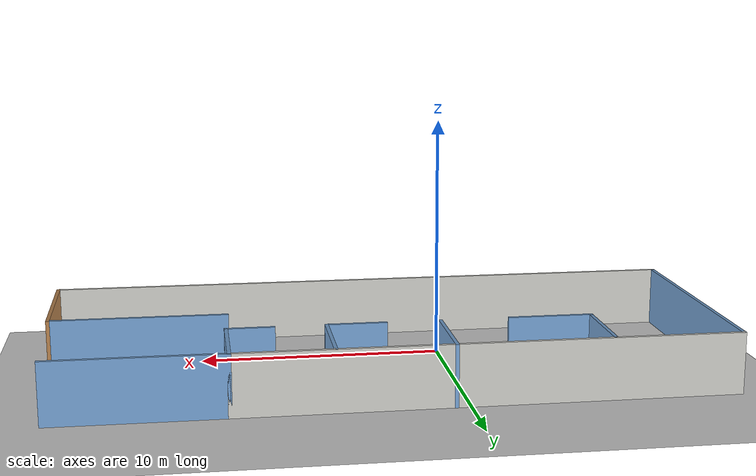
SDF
<sdf version="1.6">
 <world name="default">
  <model name="ground_plane">
   <static>1</static>
   <link name="link">
    <collision name="collision">
     <geometry><plane><normal>0 0 1</normal><size>100 100</size></plane></geometry>
     <surface>
      <contact><collide_bitmask>65535</collide_bitmask></contact>
      <friction><ode><mu>100</mu><mu2>50</mu2></ode></friction>
     </surface>
    </collision>
    <visual name="visual">
     <cast_shadows>0</cast_shadows>
     <geometry><plane><normal>0 0 1</normal><size>100 100</size></plane></geometry>
     <material>
      <script><uri>file://media/materials/scripts/gazebo.material</uri><name>Gazebo/Grey</name></script>
     </material>
    </visual>
   </link>
  </model>
  <model name="building">
   <pose>2.67066 1.97158 0 0 -0 0</pose>
   <link name="Wall_10">
    <collision name="Wall_10_Collision">
     <geometry><box><size>2 0.15 2.5</size></box></geometry>
     <pose>0 0 1.25 0 -0 0</pose>
    </collision>
    <visual name="Wall_10_Visual">
     <pose>0 0 1.25 0 -0 0</pose>
     <geometry><box><size>2 0.15 2.5</size></box></geometry>
     <material>
      <script><uri>file://media/materials/scripts/gazebo.material</uri><name>Gazebo/Grey</name></script>
      <ambient>0.447059 0.623529 0.811765 1</ambient>
     </material>
     <meta><layer>0</layer></meta>
    </visual>
    <pose>5.49986 1.94581 0 0 -0 3.14159</pose>
   </link>
   <link name="Wall_12">
    <collision name="Wall_12_Collision">
     <geometry><box><size>3.5 0.15 2.5</size></box></geometry>
     <pose>0 0 1.25 0 -0 0</pose>
    </collision>
    <visual name="Wall_12_Visual">
     <pose>0 0 1.25 0 -0 0</pose>
     <geometry><box><size>3.5 0.15 2.5</size></box></geometry>
     <material>
      <script><uri>file://media/materials/scripts/gazebo.material</uri><name>Gazebo/Grey</name></script>
      <ambient>0.447059 0.623529 0.811765 1</ambient>
     </material>
     <meta><layer>0</layer></meta>
    </visual>
    <pose>2.4718 3.58334 0 0 -0 -1.5708</pose>
   </link>
   <link name="Wall_14">
    <collision name="Wall_14_Collision">
     <geometry><box><size>2.5 0.15 2.5</size></box></geometry>
     <pose>0 0 1.25 0 -0 0</pose>
    </collision>
    <visual name="Wall_14_Visual">
     <pose>0 0 1.25 0 -0 0</pose>
     <geometry><box><size>2.5 0.15 2.5</size></box></geometry>
     <material>
      <script><uri>file://media/materials/scripts/gazebo.material</uri><name>Gazebo/Grey</name></script>
      <ambient>0.447059 0.623529 0.811765 1</ambient>
     </material>
     <meta><layer>0</layer></meta>
    </visual>
    <pose>1.2968 1.90834 0 0 -0 3.14159</pose>
   </link>
   <link name="Wall_17">
    <collision name="Wall_17_Collision">
     <geometry><box><size>3.5 0.15 2.5</size></box></geometry>
     <pose>0 0 1.25 0 -0 0</pose>
    </collision>
    <visual name="Wall_17_Visual">
     <pose>0 0 1.25 0 -0 0</pose>
     <geometry><box><size>3.5 0.15 2.5</size></box></geometry>
     <material>
      <script><uri>file://media/materials/scripts/gazebo.material</uri><name>Gazebo/Grey</name></script>
      <ambient>0.447059 0.623529 0.811765 1</ambient>
     </material>
     <meta><layer>0</layer></meta>
    </visual>
    <pose>-2.10806 3.6296 0 0 -0 -1.5708</pose>
   </link>
   <link name="Wall_21">
    <collision name="Wall_21_Collision">
     <geometry><box><size>10.75 0.15 2.5</size></box></geometry>
     <pose>0 0 1.25 0 -0 0</pose>
    </collision>
    <visual name="Wall_21_Visual">
     <pose>0 0 1.25 0 -0 0</pose>
     <geometry><box><size>10.75 0.15 2.5</size></box></geometry>
     <material>
      <script><uri>file://media/materials/scripts/gazebo.material</uri><name>Gazebo/Grey</name></script>
      <ambient>0.447059 0.623529 0.811765 1</ambient>
     </material>
     <meta><layer>0</layer></meta>
    </visual>
    <pose>-13.425 -0.004602 0 0 -0 -1.5708</pose>
   </link>
   <link name="Wall_22">
    <collision name="Wall_22_Collision">
     <geometry><box><size>27 0.15 2.5</size></box></geometry>
     <pose>0 0 1.25 0 -0 0</pose>
    </collision>
    <visual name="Wall_22_Visual">
     <pose>0 0 1.25 0 -0 0</pose>
     <geometry><box><size>27 0.15 2.5</size></box></geometry>
     <material>
      <script><uri>file://media/materials/scripts/gazebo.material</uri><name>Gazebo/CeilingTiled</name></script>
      <ambient>0.447059 0.623529 0.811765 1</ambient>
     </material>
     <meta><layer>0</layer></meta>
    </visual>
    <pose>0 -5.3046 0 0 -0 0</pose>
   </link>
   <link name="Wall_23">
    <collision name="Wall_23_Collision">
     <geometry><box><size>5.25 0.15 2.5</size></box></geometry>
     <pose>0 0 1.25 0 -0 0</pose>
    </collision>
    <visual name="Wall_23_Visual">
     <pose>0 0 1.25 0 -0 0</pose>
     <geometry><box><size>5.25 0.15 2.5</size></box></geometry>
     <material>
      <script><uri>file://media/materials/scripts/gazebo.material</uri><name>Gazebo/Wood</name></script>
      <ambient>0.447059 0.623529 0.811765 1</ambient>
     </material>
     <meta><layer>0</layer></meta>
    </visual>
    <pose>13.425 -2.7546 0 0 -0 1.5708</pose>
   </link>
   <link name="Wall_25">
    <collision name="Wall_25_Collision">
     <geometry><box><size>7 0.15 2.5</size></box></geometry>
     <pose>0 0 1.25 0 -0 0</pose>
    </collision>
    <visual name="Wall_25_Visual">
     <pose>0 0 1.25 0 -0 0</pose>
     <geometry><box><size>7 0.15 2.5</size></box></geometry>
     <material>
      <script><uri>file://media/materials/scripts/gazebo.material</uri><name>Gazebo/Grey</name></script>
      <ambient>0.447059 0.623529 0.811765 1</ambient>
     </material>
     <meta><layer>0</layer></meta>
    </visual>
    <pose>9.84985 5.2958 0 0 -0 0</pose>
   </link>
   <link name="Wall_28">
    <collision name="Wall_28_Collision">
     <geometry><box><size>7.25 0.15 2.5</size></box></geometry>
     <pose>0 0 1.25 0 -0 0</pose>
    </collision>
    <visual name="Wall_28_Visual">
     <pose>0 0 1.25 0 -0 0</pose>
     <geometry><box><size>7.25 0.15 2.5</size></box></geometry>
     <material>
      <script><uri>file://media/materials/scripts/gazebo.material</uri><name>Gazebo/Grey</name></script>
      <ambient>0.447059 0.623529 0.811765 1</ambient>
     </material>
     <meta><layer>0</layer></meta>
    </visual>
    <pose>9.875 -0.204602 0 0 -0 3.14159</pose>
   </link>
   <link name="Wall_3">
    <collision name="Wall_3_Collision">
     <geometry><box><size>19.9999 0.15 2.5</size></box></geometry>
     <pose>0 0 1.25 0 -0 0</pose>
    </collision>
    <visual name="Wall_3_Visual">
     <pose>0 0 1.25 0 -0 0</pose>
     <geometry><box><size>19.9999 0.15 2.5</size></box></geometry>
     <material>
      <script><uri>file://media/materials/scripts/gazebo.material</uri><name>Gazebo/CeilingTiled</name></script>
      <ambient>0.447059 0.623529 0.811765 1</ambient>
     </material>
     <meta><layer>0</layer></meta>
    </visual>
    <pose>-3.50007 5.2956 0 0 -0 2e-05</pose>
   </link>
   <link name="Wall_30">
    <collision name="Wall_30_Collision">
     <geometry><box><size>3.5 0.15 2.5</size></box></geometry>
     <pose>0 0 1.25 0 -0 0</pose>
    </collision>
    <visual name="Wall_30_Visual">
     <pose>0 0 1.25 0 -0 0</pose>
     <geometry><box><size>3.5 0.15 2.5</size></box></geometry>
     <material>
      <script><uri>file://media/materials/scripts/gazebo.material</uri><name>Gazebo/Grey</name></script>
      <ambient>0.447059 0.623529 0.811765 1</ambient>
     </material>
     <meta><layer>0</layer></meta>
    </visual>
    <pose>-6.6321 1.90323 0 0 -0 3.14159</pose>
   </link>
   <link name="Wall_31">
    <collision name="Wall_31_Collision">
     <geometry><box><size>3.5 0.15 2.5</size></box></geometry>
     <pose>0 0 1.25 0 -0 0</pose>
    </collision>
    <visual name="Wall_31_Visual">
     <pose>0 0 1.25 0 -0 0</pose>
     <geometry><box><size>3.5 0.15 2.5</size></box></geometry>
     <material>
      <script><uri>file://media/materials/scripts/gazebo.material</uri><name>Gazebo/Grey</name></script>
      <ambient>0.447059 0.623529 0.811765 1</ambient>
     </material>
     <meta><layer>0</layer></meta>
    </visual>
    <pose>-8.3071 3.57823 0 0 -0 1.5708</pose>
   </link>
   <link name="Wall_9">
    <collision name="Wall_9_Collision">
     <geometry><box><size>3.5 0.15 2.5</size></box></geometry>
     <pose>0 0 1.25 0 -0 0</pose>
    </collision>
    <visual name="Wall_9_Visual">
     <pose>0 0 1.25 0 -0 0</pose>
     <geometry><box><size>3.5 0.15 2.5</size></box></geometry>
     <material>
      <script><uri>file://media/materials/scripts/gazebo.material</uri><name>Gazebo/Grey</name></script>
      <ambient>0.447059 0.623529 0.811765 1</ambient>
     </material>
     <meta><layer>0</layer></meta>
    </visual>
    <pose>6.42485 3.6208 0 0 -0 -1.5708</pose>
   </link>
   <static>1</static>
  </model>
  <model name="myrobot">
   <link name="link_1">
    <inertial>
     <mass>1</mass>
     <inertia>
      <ixx>0.166667</ixx>
      <ixy>0</ixy>
      <ixz>0</ixz>
      <iyy>0.166667</iyy>
      <iyz>0</iyz>
      <izz>0.166667</izz>
     </inertia>
    </inertial>
    <pose>-0.056 1e-06 0 0 -0 0</pose>
    <visual name="visual">
     <geometry><box><size>0.3 0.3 0.01</size></box></geometry>
     <material>
      <lighting>1</lighting>
      <script><uri>file://media/materials/scripts/gazebo.material</uri><name>Gazebo/Grey</name></script>
      <shader type="vertex"><normal_map>__default__</normal_map></shader>
      <ambient>0.3 0.3 0.3 1</ambient>
      <diffuse>0.7 0.7 0.7 1</diffuse>
      <specular>0.01 0.01 0.01 1</specular>
      <emissive>0 0 0 1</emissive>
     </material>
    </visual>
    <collision name="collision">
     <geometry><box><size>0.3 0.3 0.01</size></box></geometry>
     <surface>
      <friction>
       <ode><mu>1</mu><mu2>1</mu2><fdir1>0 0 0</fdir1><slip1>0</slip1><slip2>0</slip2></ode>
       <torsional>
        <coefficient>1</coefficient>
        <patch_radius>0</patch_radius>
        <surface_radius>0</surface_radius>
        <use_patch_radius>1</use_patch_radius>
        <ode><slip>0</slip></ode>
       </torsional>
      </friction>
      <bounce><restitution_coefficient>0</restitution_coefficient><threshold>1e+06</threshold></bounce>
      <contact>
       <collide_without_contact>0</collide_without_contact>
       <collide_without_contact_bitmask>1</collide_without_contact_bitmask>
       <collide_bitmask>1</collide_bitmask>
       <ode>
        <soft_cfm>0</soft_cfm>
        <soft_erp>0.2</soft_erp>
        <kp>1e+13</kp>
        <kd>1</kd>
        <max_vel>0.01</max_vel>
        <min_depth>0</min_depth>
       </ode>
       <bullet>
        <split_impulse>1</split_impulse>
        <split_impulse_penetration_threshold>-0.01</split_impulse_penetration_threshold>
        <soft_cfm>0</soft_cfm>
        <soft_erp>0.2</soft_erp>
        <kp>1e+13</kp>
        <kd>1</kd>
       </bullet>
      </contact>
     </surface>
    </collision>
   </link>
   <link name="link_2">
    <inertial>
     <mass>1</mass>
     <inertia><ixx>0.145833</ixx><ixy>0</ixy><ixz>0</ixz><iyy>0.145833</iyy><iyz>0</iyz><izz>0.125</izz></inertia>
    </inertial>
    <pose>0.094 -0.165012 0 1.5707 -0 0</pose>
    <visual name="visual">
     <geometry><cylinder><radius>0.06</radius><length>0.03</length></cylinder></geometry>
     <material>
      <lighting>1</lighting>
      <script><uri>file://media/materials/scripts/gazebo.material</uri><name>Gazebo/Grey</name></script>
      <shader type="vertex"><normal_map>__default__</normal_map></shader>
      <ambient>0.3 0.3 0.3 1</ambient>
      <diffuse>0.7 0.7 0.7 1</diffuse>
      <specular>0.01 0.01 0.01 1</specular>
      <emissive>0 0 0 1</emissive>
     </material>
    </visual>
    <collision name="collision">
     <geometry><cylinder><radius>0.06</radius><length>0.03</length></cylinder></geometry>
     <surface>
      <friction>
       <ode><mu>1</mu><mu2>1</mu2><fdir1>0 0 0</fdir1><slip1>0</slip1><slip2>0</slip2></ode>
       <torsional>
        <coefficient>1</coefficient>
        <patch_radius>0</patch_radius>
        <surface_radius>0</surface_radius>
        <use_patch_radius>1</use_patch_radius>
        <ode><slip>0</slip></ode>
       </torsional>
      </friction>
      <bounce><restitution_coefficient>0</restitution_coefficient><threshold>1e+06</threshold></bounce>
      <contact>
       <collide_without_contact>0</collide_without_contact>
       <collide_without_contact_bitmask>1</collide_without_contact_bitmask>
       <collide_bitmask>1</collide_bitmask>
       <ode>
        <soft_cfm>0</soft_cfm>
        <soft_erp>0.2</soft_erp>
        <kp>1e+13</kp>
        <kd>1</kd>
        <max_vel>0.01</max_vel>
        <min_depth>0</min_depth>
       </ode>
       <bullet>
        <split_impulse>1</split_impulse>
        <split_impulse_penetration_threshold>-0.01</split_impulse_penetration_threshold>
        <soft_cfm>0</soft_cfm>
        <soft_erp>0.2</soft_erp>
        <kp>1e+13</kp>
        <kd>1</kd>
       </bullet>
      </contact>
     </surface>
    </collision>
   </link>
   <link name="link_2_clone">
    <inertial>
     <mass>1</mass>
     <inertia><ixx>0.145833</ixx><ixy>0</ixy><ixz>0</ixz><iyy>0.145833</iyy><iyz>0</iyz><izz>0.125</izz></inertia>
    </inertial>
    <pose>0.094 0.165007 0 1.5707 -0 0</pose>
    <visual name="visual">
     <geometry><cylinder><radius>0.06</radius><length>0.03</length></cylinder></geometry>
     <material>
      <lighting>1</lighting>
      <script><uri>file://media/materials/scripts/gazebo.material</uri><name>Gazebo/Grey</name></script>
      <shader type="vertex"><normal_map>__default__</normal_map></shader>
      <ambient>0.3 0.3 0.3 1</ambient>
      <diffuse>0.7 0.7 0.7 1</diffuse>
      <specular>0.01 0.01 0.01 1</specular>
      <emissive>0 0 0 1</emissive>
     </material>
    </visual>
    <collision name="collision">
     <geometry><cylinder><radius>0.06</radius><length>0.03</length></cylinder></geometry>
     <surface>
      <friction>
       <ode><mu>1</mu><mu2>1</mu2><fdir1>0 0 0</fdir1><slip1>0</slip1><slip2>0</slip2></ode>
       <torsional>
        <coefficient>1</coefficient>
        <patch_radius>0</patch_radius>
        <surface_radius>0</surface_radius>
        <use_patch_radius>1</use_patch_radius>
        <ode><slip>0</slip></ode>
       </torsional>
      </friction>
      <bounce><restitution_coefficient>0</restitution_coefficient><threshold>1e+06</threshold></bounce>
      <contact>
       <collide_without_contact>0</collide_without_contact>
       <collide_without_contact_bitmask>1</collide_without_contact_bitmask>
       <collide_bitmask>1</collide_bitmask>
       <ode>
        <soft_cfm>0</soft_cfm>
        <soft_erp>0.2</soft_erp>
        <kp>1e+13</kp>
        <kd>1</kd>
        <max_vel>0.01</max_vel>
        <min_depth>0</min_depth>
       </ode>
       <bullet>
        <split_impulse>1</split_impulse>
        <split_impulse_penetration_threshold>-0.01</split_impulse_penetration_threshold>
        <soft_cfm>0</soft_cfm>
        <soft_erp>0.2</soft_erp>
        <kp>1e+13</kp>
        <kd>1</kd>
       </bullet>
      </contact>
     </surface>
    </collision>
   </link>
   <link name="link_2_clone_0">
    <inertial>
     <mass>1</mass>
     <inertia><ixx>0.145833</ixx><ixy>0</ixy><ixz>0</ixz><iyy>0.145833</iyy><iyz>0</iyz><izz>0.125</izz></inertia>
    </inertial>
    <pose>-0.206 -0.165005 0 1.5707 -0 0</pose>
    <visual name="visual">
     <geometry><cylinder><radius>0.06</radius><length>0.03</length></cylinder></geometry>
     <material>
      <lighting>1</lighting>
      <script><uri>file://media/materials/scripts/gazebo.material</uri><name>Gazebo/Grey</name></script>
      <shader type="vertex"><normal_map>__default__</normal_map></shader>
      <ambient>0.3 0.3 0.3 1</ambient>
      <diffuse>0.7 0.7 0.7 1</diffuse>
      <specular>0.01 0.01 0.01 1</specular>
      <emissive>0 0 0 1</emissive>
     </material>
    </visual>
    <collision name="collision">
     <geometry><cylinder><radius>0.06</radius><length>0.03</length></cylinder></geometry>
     <surface>
      <friction>
       <ode><mu>1</mu><mu2>1</mu2><fdir1>0 0 0</fdir1><slip1>0</slip1><slip2>0</slip2></ode>
       <torsional>
        <coefficient>1</coefficient>
        <patch_radius>0</patch_radius>
        <surface_radius>0</surface_radius>
        <use_patch_radius>1</use_patch_radius>
        <ode><slip>0</slip></ode>
       </torsional>
      </friction>
      <bounce><restitution_coefficient>0</restitution_coefficient><threshold>1e+06</threshold></bounce>
      <contact>
       <collide_without_contact>0</collide_without_contact>
       <collide_without_contact_bitmask>1</collide_without_contact_bitmask>
       <collide_bitmask>1</collide_bitmask>
       <ode>
        <soft_cfm>0</soft_cfm>
        <soft_erp>0.2</soft_erp>
        <kp>1e+13</kp>
        <kd>1</kd>
        <max_vel>0.01</max_vel>
        <min_depth>0</min_depth>
       </ode>
       <bullet>
        <split_impulse>1</split_impulse>
        <split_impulse_penetration_threshold>-0.01</split_impulse_penetration_threshold>
        <soft_cfm>0</soft_cfm>
        <soft_erp>0.2</soft_erp>
        <kp>1e+13</kp>
        <kd>1</kd>
       </bullet>
      </contact>
     </surface>
    </collision>
   </link>
   <link name="link_2_clone_0_clone">
    <inertial>
     <mass>1</mass>
     <inertia><ixx>0.145833</ixx><ixy>0</ixy><ixz>0</ixz><iyy>0.145833</iyy><iyz>0</iyz><izz>0.125</izz></inertia>
    </inertial>
    <pose>-0.206 0.165007 0 1.5707 -0 0</pose>
    <visual name="visual">
     <geometry><cylinder><radius>0.06</radius><length>0.03</length></cylinder></geometry>
     <material>
      <lighting>1</lighting>
      <script><uri>file://media/materials/scripts/gazebo.material</uri><name>Gazebo/Grey</name></script>
      <shader type="vertex"><normal_map>__default__</normal_map></shader>
      <ambient>0.3 0.3 0.3 1</ambient>
      <diffuse>0.7 0.7 0.7 1</diffuse>
      <specular>0.01 0.01 0.01 1</specular>
      <emissive>0 0 0 1</emissive>
     </material>
    </visual>
    <collision name="collision">
     <geometry><cylinder><radius>0.06</radius><length>0.03</length></cylinder></geometry>
     <surface>
      <friction>
       <ode><mu>1</mu><mu2>1</mu2><fdir1>0 0 0</fdir1><slip1>0</slip1><slip2>0</slip2></ode>
       <torsional>
        <coefficient>1</coefficient>
        <patch_radius>0</patch_radius>
        <surface_radius>0</surface_radius>
        <use_patch_radius>1</use_patch_radius>
        <ode><slip>0</slip></ode>
       </torsional>
      </friction>
      <bounce><restitution_coefficient>0</restitution_coefficient><threshold>1e+06</threshold></bounce>
      <contact>
       <collide_without_contact>0</collide_without_contact>
       <collide_without_contact_bitmask>1</collide_without_contact_bitmask>
       <collide_bitmask>1</collide_bitmask>
       <ode>
        <soft_cfm>0</soft_cfm>
        <soft_erp>0.2</soft_erp>
        <kp>1e+13</kp>
        <kd>1</kd>
        <max_vel>0.01</max_vel>
        <min_depth>0</min_depth>
       </ode>
       <bullet>
        <split_impulse>1</split_impulse>
        <split_impulse_penetration_threshold>-0.01</split_impulse_penetration_threshold>
        <soft_cfm>0</soft_cfm>
        <soft_erp>0.2</soft_erp>
        <kp>1e+13</kp>
        <kd>1</kd>
       </bullet>
      </contact>
     </surface>
    </collision>
   </link>
   <joint name="link_1_JOINT_0" type="revolute">
    <parent>link_1</parent>
    <child>link_2</child>
    <axis>
     <xyz>0 0 1</xyz>
     <use_parent_model_frame>0</use_parent_model_frame>
     <limit>
      <lower>-1.79769e+308</lower>
      <upper>1.79769e+308</upper>
      <effort>-1</effort>
      <velocity>-1</velocity>
     </limit>
     <dynamics>
      <spring_reference>0</spring_reference>
      <spring_stiffness>0</spring_stiffness>
      <damping>0</damping>
     </dynamics>
    </axis>
    <physics>
     <ode><limit><cfm>0</cfm><erp>0.2</erp></limit><suspension><cfm>0</cfm><erp>0.2</erp></suspension></ode>
    </physics>
   </joint>
   <joint name="link_1_JOINT_1" type="revolute">
    <parent>link_1</parent>
    <child>link_2_clone</child>
    <axis>
     <xyz>0 0 1</xyz>
     <use_parent_model_frame>0</use_parent_model_frame>
     <limit>
      <lower>-1.79769e+308</lower>
      <upper>1.79769e+308</upper>
      <effort>-1</effort>
      <velocity>-1</velocity>
     </limit>
     <dynamics>
      <spring_reference>0</spring_reference>
      <spring_stiffness>0</spring_stiffness>
      <damping>0</damping>
     </dynamics>
    </axis>
    <physics>
     <ode><limit><cfm>0</cfm><erp>0.2</erp></limit><suspension><cfm>0</cfm><erp>0.2</erp></suspension></ode>
    </physics>
   </joint>
   <joint name="link_1_JOINT_2" type="revolute">
    <parent>link_1</parent>
    <child>link_2_clone_0</child>
    <axis>
     <xyz>0 0 1</xyz>
     <use_parent_model_frame>0</use_parent_model_frame>
     <limit>
      <lower>-1.79769e+308</lower>
      <upper>1.79769e+308</upper>
      <effort>-1</effort>
      <velocity>-1</velocity>
     </limit>
     <dynamics>
      <spring_reference>0</spring_reference>
      <spring_stiffness>0</spring_stiffness>
      <damping>0</damping>
     </dynamics>
    </axis>
    <physics>
     <ode><limit><cfm>0</cfm><erp>0.2</erp></limit><suspension><cfm>0</cfm><erp>0.2</erp></suspension></ode>
    </physics>
   </joint>
   <joint name="link_1_JOINT_6" type="revolute">
    <parent>link_1</parent>
    <child>link_2_clone_0_clone</child>
    <axis>
     <xyz>0 0 1</xyz>
     <use_parent_model_frame>0</use_parent_model_frame>
     <limit>
      <lower>-1.79769e+308</lower>
      <upper>1.79769e+308</upper>
      <effort>-1</effort>
      <velocity>-1</velocity>
     </limit>
     <dynamics>
      <spring_reference>0</spring_reference>
      <spring_stiffness>0</spring_stiffness>
      <damping>0</damping>
     </dynamics>
    </axis>
    <physics>
     <ode><limit><cfm>0</cfm><erp>0.2</erp></limit><suspension><cfm>0</cfm><erp>0.2</erp></suspension></ode>
    </physics>
   </joint>
   <static>0</static>
   <pose>4.16015 1.05674 0.060001 0 0 -2.6e-05</pose>
  </model>
 </world>
</sdf>
